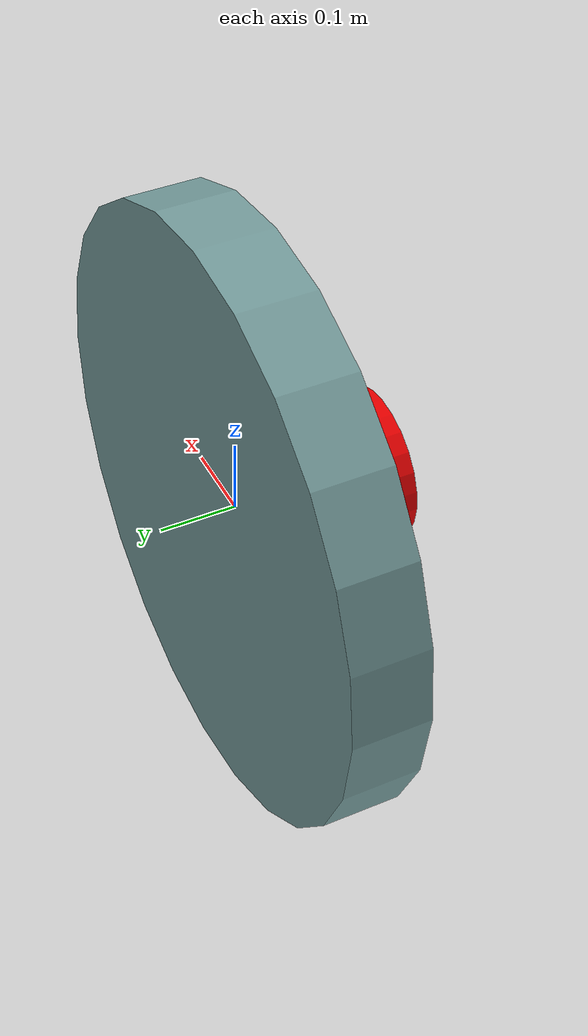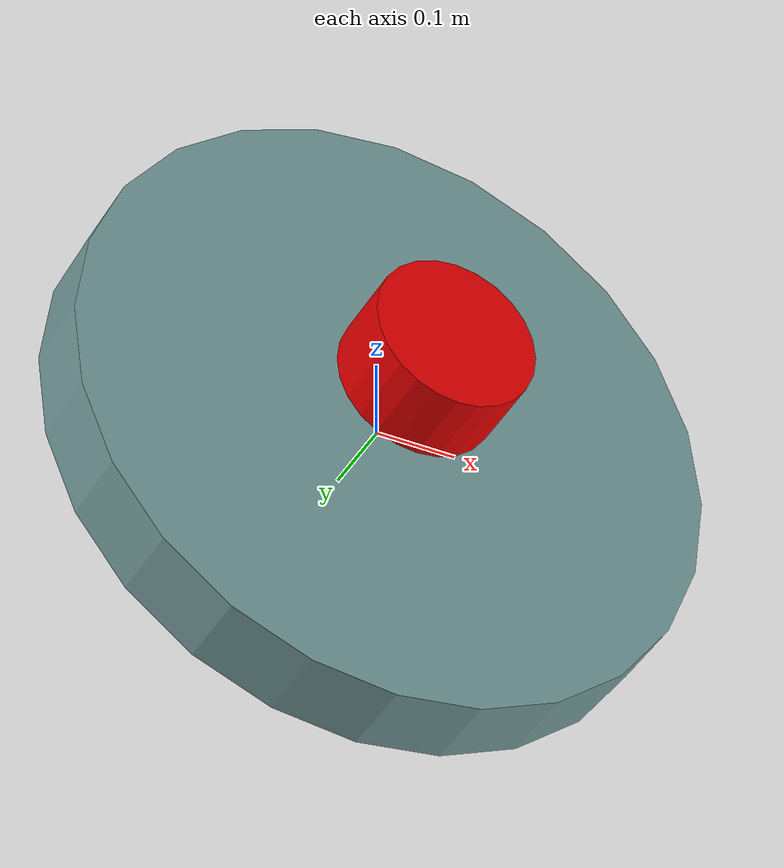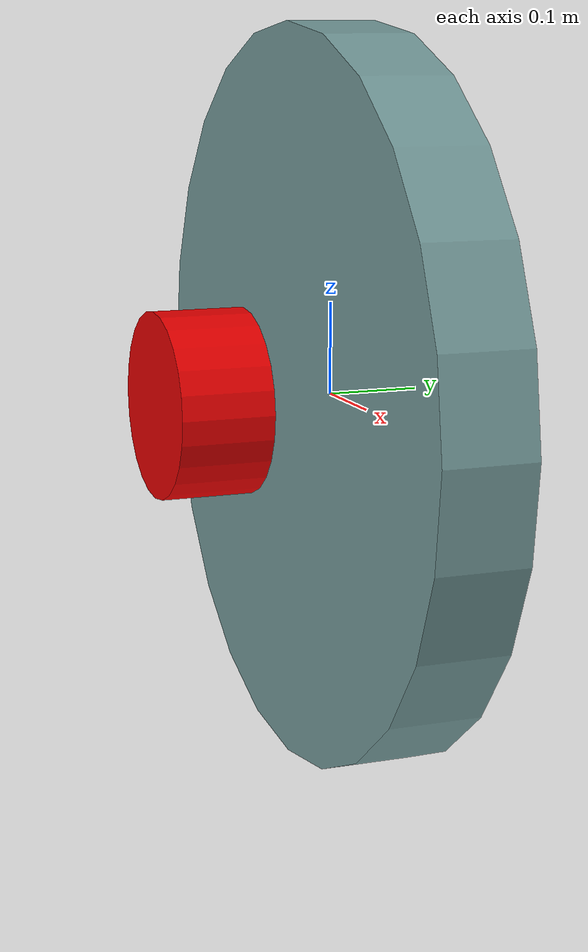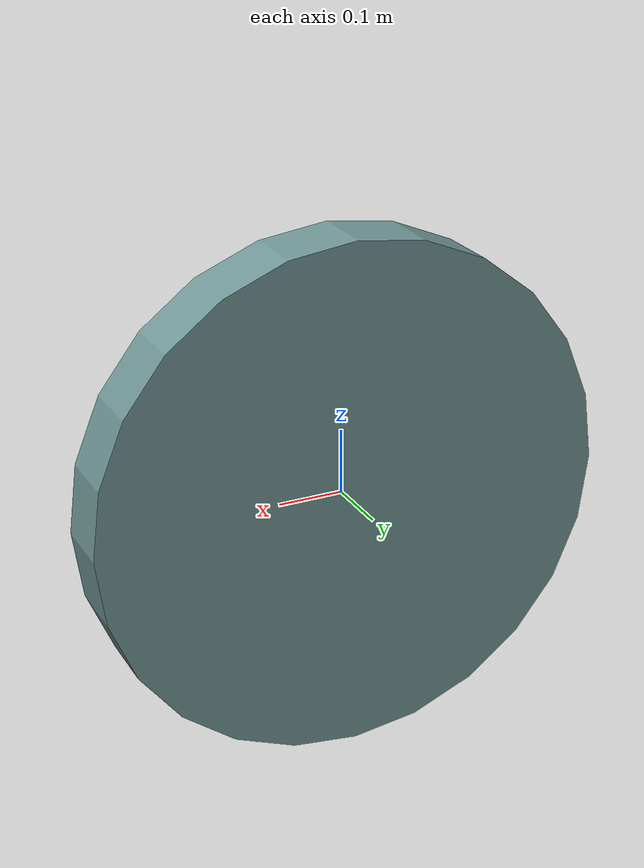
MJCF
<mujoco model="reaction wheel">
  <compiler angle="radian"/>
	<option timestep="0.001" iterations="20" gravity="0 0 0">
		<flag sensornoise="enable"/>
	</option>

  <default>
		<geom rgba="0.45 0.6 0.6 1"/>
	</default>
  <asset>
    <texture type="skybox" builtin="gradient" rgb1="1 1 1" rgb2="1 1 1" width="32" height="512"/>
  </asset>

	<worldbody>
		<light directional="true" cutoff="4" exponent="20" diffuse="1 1 1" specular="0 0 0" pos=".9 .3 2.5" dir="-.9 -.3 -2.5 "/>

		<body name="platform" pos="0 0 0">
      <site name="site-platform" pos="0 0 0"/>
      <joint name="platform-joint" type="hinge" axis="0 1 0"/>

      <geom name="rod" type="cylinder" pos="0 0 0" size=".4 .05" density="10" euler="1.57 0 0"/>

      <body name="wheel" pos="0 -0.15 0">
        <joint name="axis" type="hinge" axis="0 1 0"/>
        <geom name="wheel" type="cylinder" pos="0 0 0" size=".1 .05" density="100" euler="1.57 0 0" rgba="0.9 0 0 1"/>
      </body>
    </body>
  </worldbody>

	<actuator>
		<velocity joint='axis' name='motor'/>
	</actuator>

	<sensor>
    <jointpos name="wheel_sensor" joint="axis" noise="0.001"/>
    <jointvel name="velocity_wheel" joint="axis" noise="0.001"/>
	</sensor>
</mujoco>
